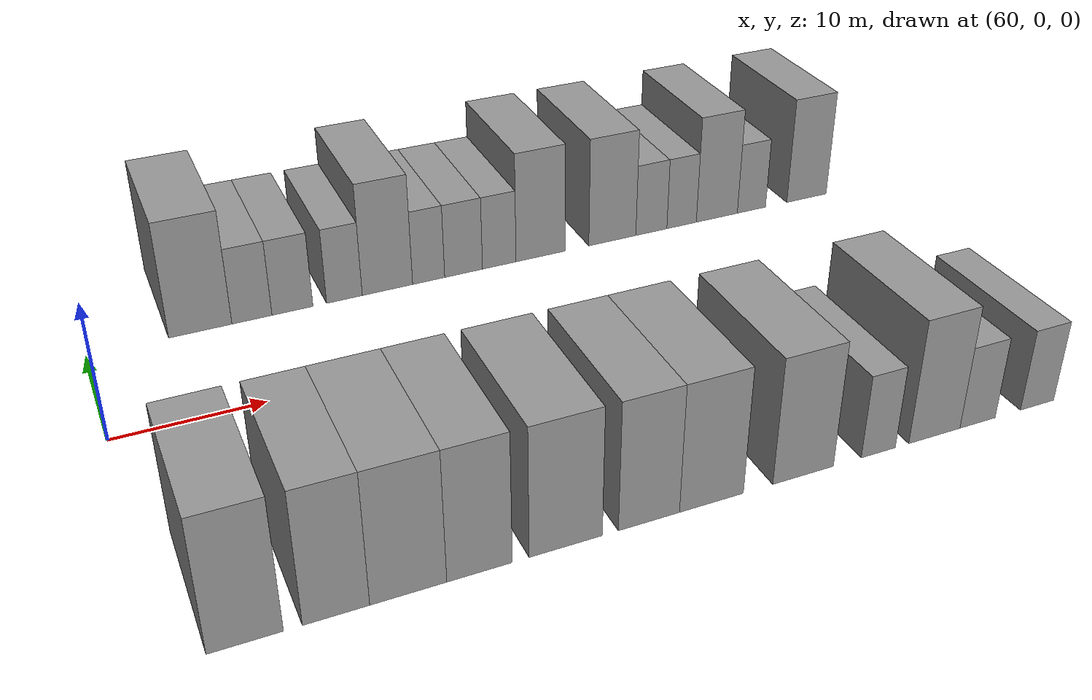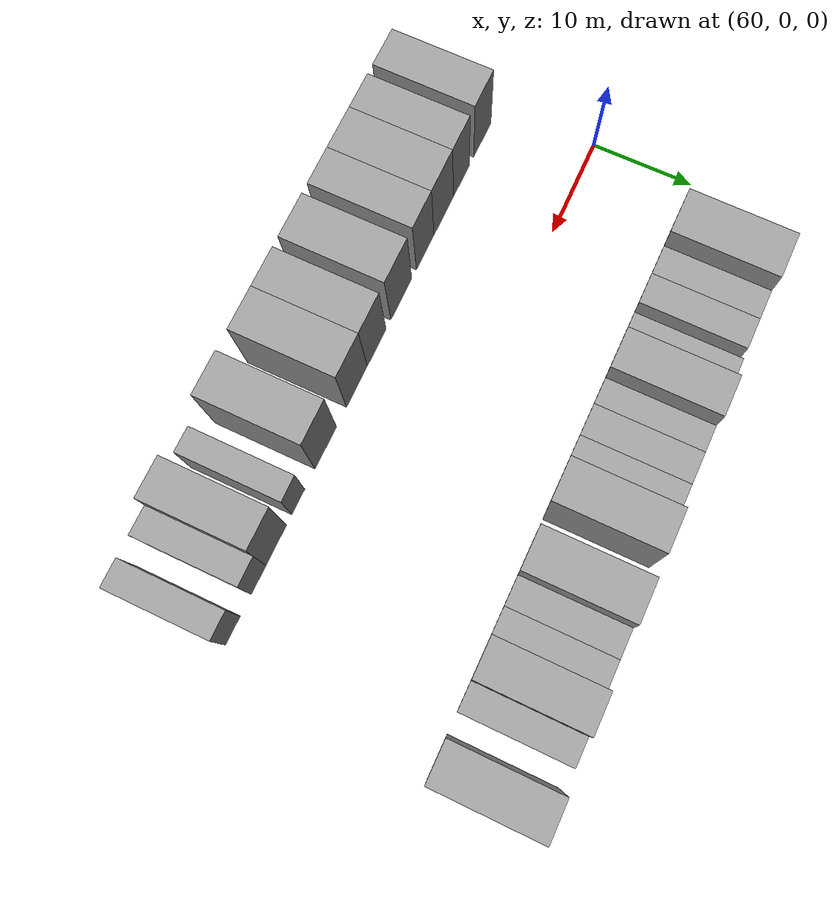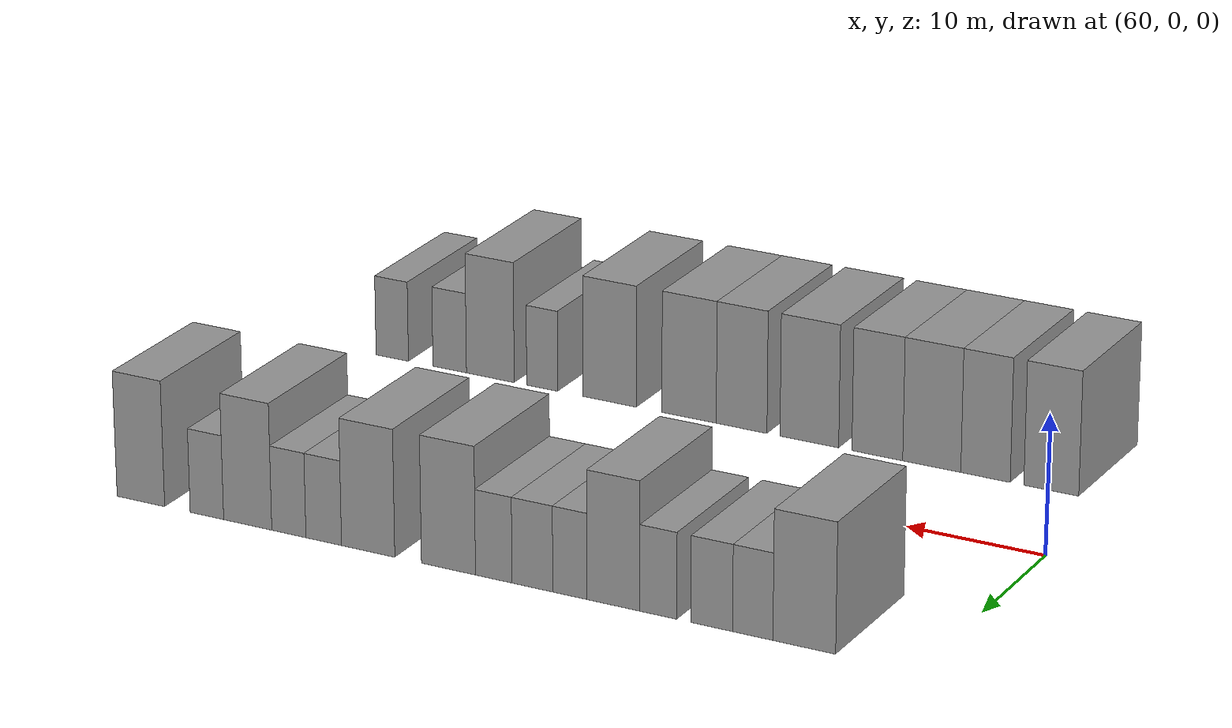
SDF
<sdf version="1.6">
 <world name="default">
  <model name="building_15">
   <static>1</static>
   <pose>67.6965 15.0000 0 0.000000 0.000000 1.570796</pose>
   <link name="link">
    <pose>0 0 4.50 0 0 0</pose>
    <collision name="collision"><geometry><box><size>10.0000 4.3741 9.0000</size></box></geometry></collision>
    <visual name="visual">
     <cast_shadows>0</cast_shadows>
     <geometry><box><size>10.0000 4.3741 9.0000</size></box></geometry>
     <material>
      <script>
       <uri>model://grey_wall/materials/scripts</uri>
       <uri>model://grey_wall/materials/textures</uri>
       <name>vrc/grey_wall</name>
      </script>
     </material>
    </visual>
   </link>
  </model>
  <model name="building_16">
   <static>1</static>
   <pose>71.3023 15.0000 0 0.000000 0.000000 1.570796</pose>
   <link name="link">
    <pose>0 0 3.00 0 0 0</pose>
    <collision name="collision"><geometry><box><size>10.0000 2.8375 6.0000</size></box></geometry></collision>
    <visual name="visual">
     <cast_shadows>0</cast_shadows>
     <geometry><box><size>10.0000 2.8375 6.0000</size></box></geometry>
     <material>
      <script>
       <uri>model://grey_wall/materials/scripts</uri>
       <uri>model://grey_wall/materials/textures</uri>
       <name>vrc/grey_wall</name>
      </script>
     </material>
    </visual>
   </link>
  </model>
  <model name="building_17">
   <static>1</static>
   <pose>74.1997 15.0000 0 0.000000 0.000000 1.570796</pose>
   <link name="link">
    <pose>0 0 3.00 0 0 0</pose>
    <collision name="collision"><geometry><box><size>10.0000 2.9573 6.0000</size></box></geometry></collision>
    <visual name="visual">
     <cast_shadows>0</cast_shadows>
     <geometry><box><size>10.0000 2.9573 6.0000</size></box></geometry>
     <material>
      <script>
       <uri>model://grey_wall/materials/scripts</uri>
       <uri>model://grey_wall/materials/textures</uri>
       <name>vrc/grey_wall</name>
      </script>
     </material>
    </visual>
   </link>
  </model>
  <model name="building_18">
   <static>1</static>
   <pose>78.0015 15.0000 0 0.000000 0.000000 1.570796</pose>
   <link name="link">
    <pose>0 0 3.00 0 0 0</pose>
    <collision name="collision"><geometry><box><size>10.0000 2.6463 6.0000</size></box></geometry></collision>
    <visual name="visual">
     <cast_shadows>0</cast_shadows>
     <geometry><box><size>10.0000 2.6463 6.0000</size></box></geometry>
     <material>
      <script>
       <uri>model://grey_wall/materials/scripts</uri>
       <uri>model://grey_wall/materials/textures</uri>
       <name>vrc/grey_wall</name>
      </script>
     </material>
    </visual>
   </link>
  </model>
  <model name="building_19">
   <static>1</static>
   <pose>81.2366 15.0000 0 0.000000 0.000000 1.570796</pose>
   <link name="link">
    <pose>0 0 4.50 0 0 0</pose>
    <collision name="collision"><geometry><box><size>10.0000 3.8238 9.0000</size></box></geometry></collision>
    <visual name="visual">
     <cast_shadows>0</cast_shadows>
     <geometry><box><size>10.0000 3.8238 9.0000</size></box></geometry>
     <material>
      <script>
       <uri>model://grey_wall/materials/scripts</uri>
       <uri>model://grey_wall/materials/textures</uri>
       <name>vrc/grey_wall</name>
      </script>
     </material>
    </visual>
   </link>
  </model>
  <model name="building_20">
   <static>1</static>
   <pose>84.3906 15.0000 0 0.000000 0.000000 1.570796</pose>
   <link name="link">
    <pose>0 0 3.00 0 0 0</pose>
    <collision name="collision"><geometry><box><size>10.0000 2.4841 6.0000</size></box></geometry></collision>
    <visual name="visual">
     <cast_shadows>0</cast_shadows>
     <geometry><box><size>10.0000 2.4841 6.0000</size></box></geometry>
     <material>
      <script>
       <uri>model://grey_wall/materials/scripts</uri>
       <uri>model://grey_wall/materials/textures</uri>
       <name>vrc/grey_wall</name>
      </script>
     </material>
    </visual>
   </link>
  </model>
  <model name="building_21">
   <static>1</static>
   <pose>87.1256 15.0000 0 0.000000 0.000000 1.570796</pose>
   <link name="link">
    <pose>0 0 3.00 0 0 0</pose>
    <collision name="collision"><geometry><box><size>10.0000 2.9860 6.0000</size></box></geometry></collision>
    <visual name="visual">
     <cast_shadows>0</cast_shadows>
     <geometry><box><size>10.0000 2.9860 6.0000</size></box></geometry>
     <material>
      <script>
       <uri>model://grey_wall/materials/scripts</uri>
       <uri>model://grey_wall/materials/textures</uri>
       <name>vrc/grey_wall</name>
      </script>
     </material>
    </visual>
   </link>
  </model>
  <model name="building_22">
   <static>1</static>
   <pose>89.9670 15.0000 0 0.000000 0.000000 1.570796</pose>
   <link name="link">
    <pose>0 0 3.00 0 0 0</pose>
    <collision name="collision"><geometry><box><size>10.0000 2.6968 6.0000</size></box></geometry></collision>
    <visual name="visual">
     <cast_shadows>0</cast_shadows>
     <geometry><box><size>10.0000 2.6968 6.0000</size></box></geometry>
     <material>
      <script>
       <uri>model://grey_wall/materials/scripts</uri>
       <uri>model://grey_wall/materials/textures</uri>
       <name>vrc/grey_wall</name>
      </script>
     </material>
    </visual>
   </link>
  </model>
  <model name="building_23">
   <static>1</static>
   <pose>93.3270 15.0000 0 0.000000 0.000000 1.570796</pose>
   <link name="link">
    <pose>0 0 4.50 0 0 0</pose>
    <collision name="collision"><geometry><box><size>10.0000 4.0232 9.0000</size></box></geometry></collision>
    <visual name="visual">
     <cast_shadows>0</cast_shadows>
     <geometry><box><size>10.0000 4.0232 9.0000</size></box></geometry>
     <material>
      <script>
       <uri>model://grey_wall/materials/scripts</uri>
       <uri>model://grey_wall/materials/textures</uri>
       <name>vrc/grey_wall</name>
      </script>
     </material>
    </visual>
   </link>
  </model>
  <model name="building_24">
   <static>1</static>
   <pose>99.3500 15.0000 0 0.000000 0.000000 1.570796</pose>
   <link name="link">
    <pose>0 0 4.50 0 0 0</pose>
    <collision name="collision"><geometry><box><size>10.0000 4.0227 9.0000</size></box></geometry></collision>
    <visual name="visual">
     <cast_shadows>0</cast_shadows>
     <geometry><box><size>10.0000 4.0227 9.0000</size></box></geometry>
     <material>
      <script>
       <uri>model://grey_wall/materials/scripts</uri>
       <uri>model://grey_wall/materials/textures</uri>
       <name>vrc/grey_wall</name>
      </script>
     </material>
    </visual>
   </link>
  </model>
  <model name="building_25">
   <static>1</static>
   <pose>102.7177 15.0000 0 0.000000 0.000000 1.570796</pose>
   <link name="link">
    <pose>0 0 3.00 0 0 0</pose>
    <collision name="collision"><geometry><box><size>10.0000 2.7128 6.0000</size></box></geometry></collision>
    <visual name="visual">
     <cast_shadows>0</cast_shadows>
     <geometry><box><size>10.0000 2.7128 6.0000</size></box></geometry>
     <material>
      <script>
       <uri>model://grey_wall/materials/scripts</uri>
       <uri>model://grey_wall/materials/textures</uri>
       <name>vrc/grey_wall</name>
      </script>
     </material>
    </visual>
   </link>
  </model>
  <model name="building_26">
   <static>1</static>
   <pose>105.3841 15.0000 0 0.000000 0.000000 1.570796</pose>
   <link name="link">
    <pose>0 0 3.00 0 0 0</pose>
    <collision name="collision"><geometry><box><size>10.0000 2.6202 6.0000</size></box></geometry></collision>
    <visual name="visual">
     <cast_shadows>0</cast_shadows>
     <geometry><box><size>10.0000 2.6202 6.0000</size></box></geometry>
     <material>
      <script>
       <uri>model://grey_wall/materials/scripts</uri>
       <uri>model://grey_wall/materials/textures</uri>
       <name>vrc/grey_wall</name>
      </script>
     </material>
    </visual>
   </link>
  </model>
  <model name="building_27">
   <static>1</static>
   <pose>108.5547 15.0000 0 0.000000 0.000000 1.570796</pose>
   <link name="link">
    <pose>0 0 4.50 0 0 0</pose>
    <collision name="collision"><geometry><box><size>10.0000 3.7210 9.0000</size></box></geometry></collision>
    <visual name="visual">
     <cast_shadows>0</cast_shadows>
     <geometry><box><size>10.0000 3.7210 9.0000</size></box></geometry>
     <material>
      <script>
       <uri>model://grey_wall/materials/scripts</uri>
       <uri>model://grey_wall/materials/textures</uri>
       <name>vrc/grey_wall</name>
      </script>
     </material>
    </visual>
   </link>
  </model>
  <model name="building_28">
   <static>1</static>
   <pose>111.7187 15.0000 0 0.000000 0.000000 1.570796</pose>
   <link name="link">
    <pose>0 0 3.00 0 0 0</pose>
    <collision name="collision"><geometry><box><size>10.0000 2.6071 6.0000</size></box></geometry></collision>
    <visual name="visual">
     <cast_shadows>0</cast_shadows>
     <geometry><box><size>10.0000 2.6071 6.0000</size></box></geometry>
     <material>
      <script>
       <uri>model://grey_wall/materials/scripts</uri>
       <uri>model://grey_wall/materials/textures</uri>
       <name>vrc/grey_wall</name>
      </script>
     </material>
    </visual>
   </link>
  </model>
  <model name="building_29">
   <static>1</static>
   <pose>116.8964 15.0000 0 0.000000 0.000000 1.570796</pose>
   <link name="link">
    <pose>0 0 4.50 0 0 0</pose>
    <collision name="collision"><geometry><box><size>10.0000 3.7483 9.0000</size></box></geometry></collision>
    <visual name="visual">
     <cast_shadows>0</cast_shadows>
     <geometry><box><size>10.0000 3.7483 9.0000</size></box></geometry>
     <material>
      <script>
       <uri>model://grey_wall/materials/scripts</uri>
       <uri>model://grey_wall/materials/textures</uri>
       <name>vrc/grey_wall</name>
      </script>
     </material>
    </visual>
   </link>
  </model>
  <model name="building_68">
   <static>1</static>
   <pose>64.0316 -15.0000 0 0.000000 0.000000 1.570796</pose>
   <link name="link">
    <pose>0 0 4.50 0 0 0</pose>
    <collision name="collision"><geometry><box><size>10.0000 4.0022 9.0000</size></box></geometry></collision>
    <visual name="visual">
     <cast_shadows>0</cast_shadows>
     <geometry><box><size>10.0000 4.0022 9.0000</size></box></geometry>
     <material>
      <script>
       <uri>model://grey_wall/materials/scripts</uri>
       <uri>model://grey_wall/materials/textures</uri>
       <name>vrc/grey_wall</name>
      </script>
     </material>
    </visual>
   </link>
  </model>
  <model name="building_69">
   <static>1</static>
   <pose>68.8542 -15.0000 0 0.000000 0.000000 1.570796</pose>
   <link name="link">
    <pose>0 0 4.50 0 0 0</pose>
    <collision name="collision"><geometry><box><size>10.0000 3.6429 9.0000</size></box></geometry></collision>
    <visual name="visual">
     <cast_shadows>0</cast_shadows>
     <geometry><box><size>10.0000 3.6429 9.0000</size></box></geometry>
     <material>
      <script>
       <uri>model://grey_wall/materials/scripts</uri>
       <uri>model://grey_wall/materials/textures</uri>
       <name>vrc/grey_wall</name>
      </script>
     </material>
    </visual>
   </link>
  </model>
  <model name="building_70">
   <static>1</static>
   <pose>72.8383 -15.0000 0 0.000000 0.000000 1.570796</pose>
   <link name="link">
    <pose>0 0 4.50 0 0 0</pose>
    <collision name="collision"><geometry><box><size>10.0000 4.3254 9.0000</size></box></geometry></collision>
    <visual name="visual">
     <cast_shadows>0</cast_shadows>
     <geometry><box><size>10.0000 4.3254 9.0000</size></box></geometry>
     <material>
      <script>
       <uri>model://grey_wall/materials/scripts</uri>
       <uri>model://grey_wall/materials/textures</uri>
       <name>vrc/grey_wall</name>
      </script>
     </material>
    </visual>
   </link>
  </model>
  <model name="building_71">
   <static>1</static>
   <pose>76.9110 -15.0000 0 0.000000 0.000000 1.570796</pose>
   <link name="link">
    <pose>0 0 4.50 0 0 0</pose>
    <collision name="collision"><geometry><box><size>10.0000 3.8201 9.0000</size></box></geometry></collision>
    <visual name="visual">
     <cast_shadows>0</cast_shadows>
     <geometry><box><size>10.0000 3.8201 9.0000</size></box></geometry>
     <material>
      <script>
       <uri>model://grey_wall/materials/scripts</uri>
       <uri>model://grey_wall/materials/textures</uri>
       <name>vrc/grey_wall</name>
      </script>
     </material>
    </visual>
   </link>
  </model>
  <model name="building_72">
   <static>1</static>
   <pose>82.0539 -15.0000 0 0.000000 0.000000 1.570796</pose>
   <link name="link">
    <pose>0 0 4.50 0 0 0</pose>
    <collision name="collision"><geometry><box><size>10.0000 4.4656 9.0000</size></box></geometry></collision>
    <visual name="visual">
     <cast_shadows>0</cast_shadows>
     <geometry><box><size>10.0000 4.4656 9.0000</size></box></geometry>
     <material>
      <script>
       <uri>model://grey_wall/materials/scripts</uri>
       <uri>model://grey_wall/materials/textures</uri>
       <name>vrc/grey_wall</name>
      </script>
     </material>
    </visual>
   </link>
  </model>
  <model name="building_73">
   <static>1</static>
   <pose>87.2383 -15.0000 0 0.000000 0.000000 1.570796</pose>
   <link name="link">
    <pose>0 0 4.50 0 0 0</pose>
    <collision name="collision"><geometry><box><size>10.0000 3.9032 9.0000</size></box></geometry></collision>
    <visual name="visual">
     <cast_shadows>0</cast_shadows>
     <geometry><box><size>10.0000 3.9032 9.0000</size></box></geometry>
     <material>
      <script>
       <uri>model://grey_wall/materials/scripts</uri>
       <uri>model://grey_wall/materials/textures</uri>
       <name>vrc/grey_wall</name>
      </script>
     </material>
    </visual>
   </link>
  </model>
  <model name="building_74">
   <static>1</static>
   <pose>91.3028 -15.0000 0 0.000000 0.000000 1.570796</pose>
   <link name="link">
    <pose>0 0 4.50 0 0 0</pose>
    <collision name="collision"><geometry><box><size>10.0000 4.2258 9.0000</size></box></geometry></collision>
    <visual name="visual">
     <cast_shadows>0</cast_shadows>
     <geometry><box><size>10.0000 4.2258 9.0000</size></box></geometry>
     <material>
      <script>
       <uri>model://grey_wall/materials/scripts</uri>
       <uri>model://grey_wall/materials/textures</uri>
       <name>vrc/grey_wall</name>
      </script>
     </material>
    </visual>
   </link>
  </model>
  <model name="building_75">
   <static>1</static>
   <pose>97.5281 -15.0000 0 0.000000 0.000000 1.570796</pose>
   <link name="link">
    <pose>0 0 4.50 0 0 0</pose>
    <collision name="collision"><geometry><box><size>10.0000 4.2249 9.0000</size></box></geometry></collision>
    <visual name="visual">
     <cast_shadows>0</cast_shadows>
     <geometry><box><size>10.0000 4.2249 9.0000</size></box></geometry>
     <material>
      <script>
       <uri>model://grey_wall/materials/scripts</uri>
       <uri>model://grey_wall/materials/textures</uri>
       <name>vrc/grey_wall</name>
      </script>
     </material>
    </visual>
   </link>
  </model>
  <model name="building_76">
   <static>1</static>
   <pose>102.8810 -15.0000 0 0.000000 0.000000 1.570796</pose>
   <link name="link">
    <pose>0 0 3.00 0 0 0</pose>
    <collision name="collision"><geometry><box><size>10.0000 2.4808 6.0000</size></box></geometry></collision>
    <visual name="visual">
     <cast_shadows>0</cast_shadows>
     <geometry><box><size>10.0000 2.4808 6.0000</size></box></geometry>
     <material>
      <script>
       <uri>model://grey_wall/materials/scripts</uri>
       <uri>model://grey_wall/materials/textures</uri>
       <name>vrc/grey_wall</name>
      </script>
     </material>
    </visual>
   </link>
  </model>
  <model name="building_77">
   <static>1</static>
   <pose>107.0484 -15.0000 0 0.000000 0.000000 1.570796</pose>
   <link name="link">
    <pose>0 0 4.50 0 0 0</pose>
    <collision name="collision"><geometry><box><size>10.0000 3.8540 9.0000</size></box></geometry></collision>
    <visual name="visual">
     <cast_shadows>0</cast_shadows>
     <geometry><box><size>10.0000 3.8540 9.0000</size></box></geometry>
     <material>
      <script>
       <uri>model://grey_wall/materials/scripts</uri>
       <uri>model://grey_wall/materials/textures</uri>
       <name>vrc/grey_wall</name>
      </script>
     </material>
    </visual>
   </link>
  </model>
  <model name="building_78">
   <static>1</static>
   <pose>110.3387 -15.0000 0 0.000000 0.000000 1.570796</pose>
   <link name="link">
    <pose>0 0 3.00 0 0 0</pose>
    <collision name="collision"><geometry><box><size>10.0000 2.7267 6.0000</size></box></geometry></collision>
    <visual name="visual">
     <cast_shadows>0</cast_shadows>
     <geometry><box><size>10.0000 2.7267 6.0000</size></box></geometry>
     <material>
      <script>
       <uri>model://grey_wall/materials/scripts</uri>
       <uri>model://grey_wall/materials/textures</uri>
       <name>vrc/grey_wall</name>
      </script>
     </material>
    </visual>
   </link>
  </model>
  <model name="building_79">
   <static>1</static>
   <pose>115.0309 -15.0000 0 0.000000 0.000000 1.570796</pose>
   <link name="link">
    <pose>0 0 3.00 0 0 0</pose>
    <collision name="collision"><geometry><box><size>10.0000 2.6576 6.0000</size></box></geometry></collision>
    <visual name="visual">
     <cast_shadows>0</cast_shadows>
     <geometry><box><size>10.0000 2.6576 6.0000</size></box></geometry>
     <material>
      <script>
       <uri>model://grey_wall/materials/scripts</uri>
       <uri>model://grey_wall/materials/textures</uri>
       <name>vrc/grey_wall</name>
      </script>
     </material>
    </visual>
   </link>
  </model>
 </world>
</sdf>
